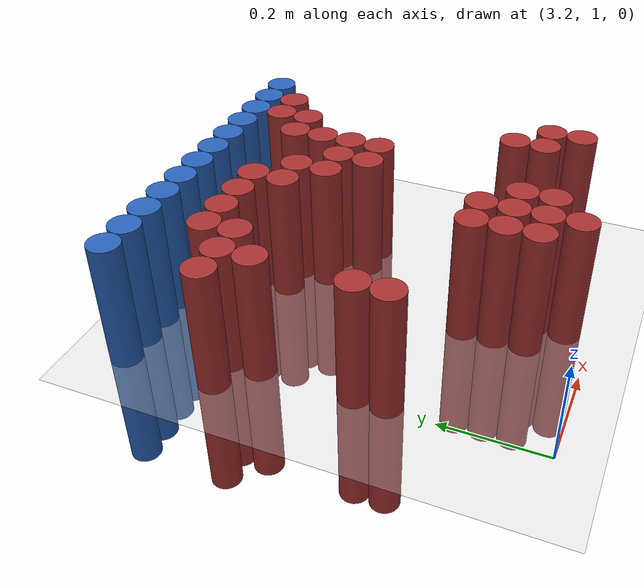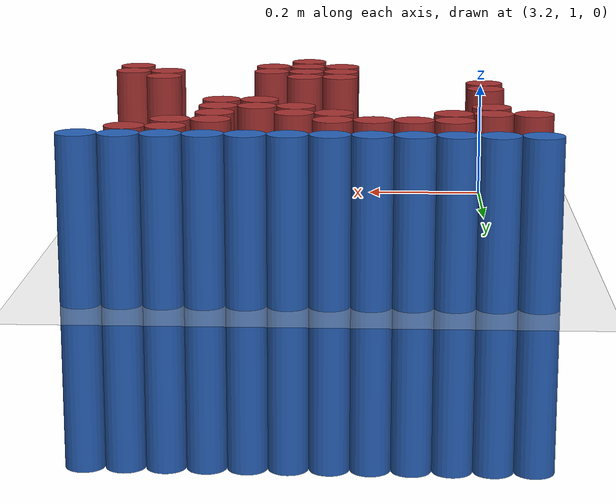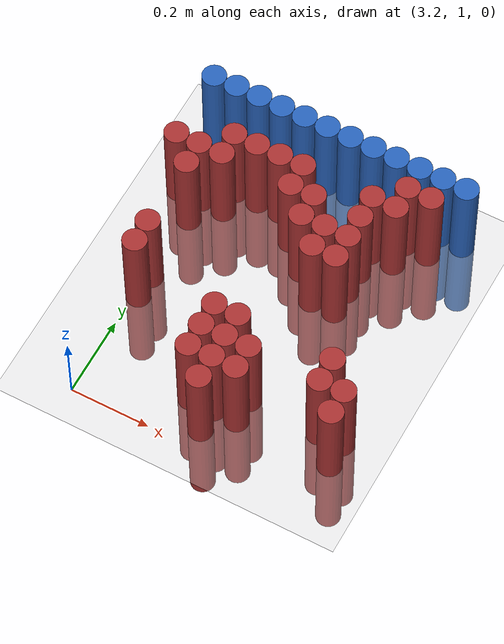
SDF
<sdf version="1.6">
 <world name="default">
  <model name="ground_plane">
   <static>1</static>
   <link name="link">
    <collision name="collision">
     <geometry><plane><normal>0 0 1</normal><size>100 100</size></plane></geometry>
     <surface><friction><ode><mu>100</mu><mu2>50</mu2></ode></friction></surface>
    </collision>
    <visual name="visual">
     <cast_shadows>0</cast_shadows>
     <geometry><plane><normal>0 0 1</normal><size>100 100</size></plane></geometry>
     <material>
      <script><uri>file://media/materials/scripts/gazebo.material</uri><name>Gazebo/Grey</name></script>
     </material>
    </visual>
   </link>
  </model>
  <model name="unit_cylinder_113">
   <static>1</static>
   <pose>3.150000 1.770000 0.000000 0.000000 0.000000 0.000000</pose>
   <link name="link">
    <inertial>
     <mass>1</mass>
     <inertia><ixx>0.145833</ixx><ixy>0</ixy><ixz>0</ixz><iyy>0.145833</iyy><iyz>0</iyz><izz>0.125</izz></inertia>
    </inertial>
    <collision name="collision">
     <geometry><cylinder><radius>0.030000</radius><length>0.5</length></cylinder></geometry>
    </collision>
    <visual name="visual">
     <geometry><cylinder><radius>0.030000</radius><length>0.5</length></cylinder></geometry>
     <material>
      <ambient>0.152000 0.379000 0.720000 1</ambient>
      <diffuse>0.152000 0.379000 0.720000 1</diffuse>
     </material>
     <material>
      <script><name>Gazebo/Grey</name><uri>file://media/materials/scripts/gazebo.material</uri></script>
     </material>
    </visual>
   </link>
  </model>
  <model name="unit_cylinder_114">
   <static>1</static>
   <pose>3.210000 1.770000 0.000000 0.000000 0.000000 0.000000</pose>
   <link name="link">
    <inertial>
     <mass>1</mass>
     <inertia><ixx>0.145833</ixx><ixy>0</ixy><ixz>0</ixz><iyy>0.145833</iyy><iyz>0</iyz><izz>0.125</izz></inertia>
    </inertial>
    <collision name="collision">
     <geometry><cylinder><radius>0.030000</radius><length>0.5</length></cylinder></geometry>
    </collision>
    <visual name="visual">
     <geometry><cylinder><radius>0.030000</radius><length>0.5</length></cylinder></geometry>
     <material>
      <ambient>0.152000 0.379000 0.720000 1</ambient>
      <diffuse>0.152000 0.379000 0.720000 1</diffuse>
     </material>
     <material>
      <script><name>Gazebo/Grey</name><uri>file://media/materials/scripts/gazebo.material</uri></script>
     </material>
    </visual>
   </link>
  </model>
  <model name="unit_cylinder_115">
   <static>1</static>
   <pose>3.270000 1.770000 0.000000 0.000000 0.000000 0.000000</pose>
   <link name="link">
    <inertial>
     <mass>1</mass>
     <inertia><ixx>0.145833</ixx><ixy>0</ixy><ixz>0</ixz><iyy>0.145833</iyy><iyz>0</iyz><izz>0.125</izz></inertia>
    </inertial>
    <collision name="collision">
     <geometry><cylinder><radius>0.030000</radius><length>0.5</length></cylinder></geometry>
    </collision>
    <visual name="visual">
     <geometry><cylinder><radius>0.030000</radius><length>0.5</length></cylinder></geometry>
     <material>
      <ambient>0.152000 0.379000 0.720000 1</ambient>
      <diffuse>0.152000 0.379000 0.720000 1</diffuse>
     </material>
     <material>
      <script><name>Gazebo/Grey</name><uri>file://media/materials/scripts/gazebo.material</uri></script>
     </material>
    </visual>
   </link>
  </model>
  <model name="unit_cylinder_116">
   <static>1</static>
   <pose>3.330000 1.770000 0.000000 0.000000 0.000000 0.000000</pose>
   <link name="link">
    <inertial>
     <mass>1</mass>
     <inertia><ixx>0.145833</ixx><ixy>0</ixy><ixz>0</ixz><iyy>0.145833</iyy><iyz>0</iyz><izz>0.125</izz></inertia>
    </inertial>
    <collision name="collision">
     <geometry><cylinder><radius>0.030000</radius><length>0.5</length></cylinder></geometry>
    </collision>
    <visual name="visual">
     <geometry><cylinder><radius>0.030000</radius><length>0.5</length></cylinder></geometry>
     <material>
      <ambient>0.152000 0.379000 0.720000 1</ambient>
      <diffuse>0.152000 0.379000 0.720000 1</diffuse>
     </material>
     <material>
      <script><name>Gazebo/Grey</name><uri>file://media/materials/scripts/gazebo.material</uri></script>
     </material>
    </visual>
   </link>
  </model>
  <model name="unit_cylinder_117">
   <static>1</static>
   <pose>3.390000 1.770000 0.000000 0.000000 0.000000 0.000000</pose>
   <link name="link">
    <inertial>
     <mass>1</mass>
     <inertia><ixx>0.145833</ixx><ixy>0</ixy><ixz>0</ixz><iyy>0.145833</iyy><iyz>0</iyz><izz>0.125</izz></inertia>
    </inertial>
    <collision name="collision">
     <geometry><cylinder><radius>0.030000</radius><length>0.5</length></cylinder></geometry>
    </collision>
    <visual name="visual">
     <geometry><cylinder><radius>0.030000</radius><length>0.5</length></cylinder></geometry>
     <material>
      <ambient>0.152000 0.379000 0.720000 1</ambient>
      <diffuse>0.152000 0.379000 0.720000 1</diffuse>
     </material>
     <material>
      <script><name>Gazebo/Grey</name><uri>file://media/materials/scripts/gazebo.material</uri></script>
     </material>
    </visual>
   </link>
  </model>
  <model name="unit_cylinder_118">
   <static>1</static>
   <pose>3.450000 1.770000 0.000000 0.000000 0.000000 0.000000</pose>
   <link name="link">
    <inertial>
     <mass>1</mass>
     <inertia><ixx>0.145833</ixx><ixy>0</ixy><ixz>0</ixz><iyy>0.145833</iyy><iyz>0</iyz><izz>0.125</izz></inertia>
    </inertial>
    <collision name="collision">
     <geometry><cylinder><radius>0.030000</radius><length>0.5</length></cylinder></geometry>
    </collision>
    <visual name="visual">
     <geometry><cylinder><radius>0.030000</radius><length>0.5</length></cylinder></geometry>
     <material>
      <ambient>0.152000 0.379000 0.720000 1</ambient>
      <diffuse>0.152000 0.379000 0.720000 1</diffuse>
     </material>
     <material>
      <script><name>Gazebo/Grey</name><uri>file://media/materials/scripts/gazebo.material</uri></script>
     </material>
    </visual>
   </link>
  </model>
  <model name="unit_cylinder_119">
   <static>1</static>
   <pose>3.510000 1.770000 0.000000 0.000000 0.000000 0.000000</pose>
   <link name="link">
    <inertial>
     <mass>1</mass>
     <inertia><ixx>0.145833</ixx><ixy>0</ixy><ixz>0</ixz><iyy>0.145833</iyy><iyz>0</iyz><izz>0.125</izz></inertia>
    </inertial>
    <collision name="collision">
     <geometry><cylinder><radius>0.030000</radius><length>0.5</length></cylinder></geometry>
    </collision>
    <visual name="visual">
     <geometry><cylinder><radius>0.030000</radius><length>0.5</length></cylinder></geometry>
     <material>
      <ambient>0.152000 0.379000 0.720000 1</ambient>
      <diffuse>0.152000 0.379000 0.720000 1</diffuse>
     </material>
     <material>
      <script><name>Gazebo/Grey</name><uri>file://media/materials/scripts/gazebo.material</uri></script>
     </material>
    </visual>
   </link>
  </model>
  <model name="unit_cylinder_120">
   <static>1</static>
   <pose>3.570000 1.770000 0.000000 0.000000 0.000000 0.000000</pose>
   <link name="link">
    <inertial>
     <mass>1</mass>
     <inertia><ixx>0.145833</ixx><ixy>0</ixy><ixz>0</ixz><iyy>0.145833</iyy><iyz>0</iyz><izz>0.125</izz></inertia>
    </inertial>
    <collision name="collision">
     <geometry><cylinder><radius>0.030000</radius><length>0.5</length></cylinder></geometry>
    </collision>
    <visual name="visual">
     <geometry><cylinder><radius>0.030000</radius><length>0.5</length></cylinder></geometry>
     <material>
      <ambient>0.152000 0.379000 0.720000 1</ambient>
      <diffuse>0.152000 0.379000 0.720000 1</diffuse>
     </material>
     <material>
      <script><name>Gazebo/Grey</name><uri>file://media/materials/scripts/gazebo.material</uri></script>
     </material>
    </visual>
   </link>
  </model>
  <model name="unit_cylinder_121">
   <static>1</static>
   <pose>3.630000 1.770000 0.000000 0.000000 0.000000 0.000000</pose>
   <link name="link">
    <inertial>
     <mass>1</mass>
     <inertia><ixx>0.145833</ixx><ixy>0</ixy><ixz>0</ixz><iyy>0.145833</iyy><iyz>0</iyz><izz>0.125</izz></inertia>
    </inertial>
    <collision name="collision">
     <geometry><cylinder><radius>0.030000</radius><length>0.5</length></cylinder></geometry>
    </collision>
    <visual name="visual">
     <geometry><cylinder><radius>0.030000</radius><length>0.5</length></cylinder></geometry>
     <material>
      <ambient>0.152000 0.379000 0.720000 1</ambient>
      <diffuse>0.152000 0.379000 0.720000 1</diffuse>
     </material>
     <material>
      <script><name>Gazebo/Grey</name><uri>file://media/materials/scripts/gazebo.material</uri></script>
     </material>
    </visual>
   </link>
  </model>
  <model name="unit_cylinder_122">
   <static>1</static>
   <pose>3.690000 1.770000 0.000000 0.000000 0.000000 0.000000</pose>
   <link name="link">
    <inertial>
     <mass>1</mass>
     <inertia><ixx>0.145833</ixx><ixy>0</ixy><ixz>0</ixz><iyy>0.145833</iyy><iyz>0</iyz><izz>0.125</izz></inertia>
    </inertial>
    <collision name="collision">
     <geometry><cylinder><radius>0.030000</radius><length>0.5</length></cylinder></geometry>
    </collision>
    <visual name="visual">
     <geometry><cylinder><radius>0.030000</radius><length>0.5</length></cylinder></geometry>
     <material>
      <ambient>0.152000 0.379000 0.720000 1</ambient>
      <diffuse>0.152000 0.379000 0.720000 1</diffuse>
     </material>
     <material>
      <script><name>Gazebo/Grey</name><uri>file://media/materials/scripts/gazebo.material</uri></script>
     </material>
    </visual>
   </link>
  </model>
  <model name="unit_cylinder_123">
   <static>1</static>
   <pose>3.750000 1.770000 0.000000 0.000000 0.000000 0.000000</pose>
   <link name="link">
    <inertial>
     <mass>1</mass>
     <inertia><ixx>0.145833</ixx><ixy>0</ixy><ixz>0</ixz><iyy>0.145833</iyy><iyz>0</iyz><izz>0.125</izz></inertia>
    </inertial>
    <collision name="collision">
     <geometry><cylinder><radius>0.030000</radius><length>0.5</length></cylinder></geometry>
    </collision>
    <visual name="visual">
     <geometry><cylinder><radius>0.030000</radius><length>0.5</length></cylinder></geometry>
     <material>
      <ambient>0.152000 0.379000 0.720000 1</ambient>
      <diffuse>0.152000 0.379000 0.720000 1</diffuse>
     </material>
     <material>
      <script><name>Gazebo/Grey</name><uri>file://media/materials/scripts/gazebo.material</uri></script>
     </material>
    </visual>
   </link>
  </model>
  <model name="unit_cylinder_124">
   <static>1</static>
   <pose>3.810000 1.770000 0.000000 0.000000 0.000000 0.000000</pose>
   <link name="link">
    <inertial>
     <mass>1</mass>
     <inertia><ixx>0.145833</ixx><ixy>0</ixy><ixz>0</ixz><iyy>0.145833</iyy><iyz>0</iyz><izz>0.125</izz></inertia>
    </inertial>
    <collision name="collision">
     <geometry><cylinder><radius>0.030000</radius><length>0.5</length></cylinder></geometry>
    </collision>
    <visual name="visual">
     <geometry><cylinder><radius>0.030000</radius><length>0.5</length></cylinder></geometry>
     <material>
      <ambient>0.152000 0.379000 0.720000 1</ambient>
      <diffuse>0.152000 0.379000 0.720000 1</diffuse>
     </material>
     <material>
      <script><name>Gazebo/Grey</name><uri>file://media/materials/scripts/gazebo.material</uri></script>
     </material>
    </visual>
   </link>
  </model>
  <model name="unit_cylinder_132">
   <static>1</static>
   <pose>3.690000 1.710000 0.000000 0.000000 0.000000 0.000000</pose>
   <link name="link">
    <inertial>
     <mass>1</mass>
     <inertia><ixx>0.145833</ixx><ixy>0</ixy><ixz>0</ixz><iyy>0.145833</iyy><iyz>0</iyz><izz>0.125</izz></inertia>
    </inertial>
    <collision name="collision">
     <geometry><cylinder><radius>0.030000</radius><length>0.5</length></cylinder></geometry>
    </collision>
    <visual name="visual">
     <geometry><cylinder><radius>0.030000</radius><length>0.5</length></cylinder></geometry>
     <material>
      <ambient>0.648000 0.192000 0.192000 1</ambient>
      <diffuse>0.648000 0.192000 0.192000 1</diffuse>
     </material>
     <material>
      <script><name>Gazebo/Grey</name><uri>file://media/materials/scripts/gazebo.material</uri></script>
     </material>
    </visual>
   </link>
  </model>
  <model name="unit_cylinder_133">
   <static>1</static>
   <pose>3.750000 1.710000 0.000000 0.000000 0.000000 0.000000</pose>
   <link name="link">
    <inertial>
     <mass>1</mass>
     <inertia><ixx>0.145833</ixx><ixy>0</ixy><ixz>0</ixz><iyy>0.145833</iyy><iyz>0</iyz><izz>0.125</izz></inertia>
    </inertial>
    <collision name="collision">
     <geometry><cylinder><radius>0.030000</radius><length>0.5</length></cylinder></geometry>
    </collision>
    <visual name="visual">
     <geometry><cylinder><radius>0.030000</radius><length>0.5</length></cylinder></geometry>
     <material>
      <ambient>0.648000 0.192000 0.192000 1</ambient>
      <diffuse>0.648000 0.192000 0.192000 1</diffuse>
     </material>
     <material>
      <script><name>Gazebo/Grey</name><uri>file://media/materials/scripts/gazebo.material</uri></script>
     </material>
    </visual>
   </link>
  </model>
  <model name="unit_cylinder_135">
   <static>1</static>
   <pose>3.270000 1.650000 0.000000 0.000000 0.000000 0.000000</pose>
   <link name="link">
    <inertial>
     <mass>1</mass>
     <inertia><ixx>0.145833</ixx><ixy>0</ixy><ixz>0</ixz><iyy>0.145833</iyy><iyz>0</iyz><izz>0.125</izz></inertia>
    </inertial>
    <collision name="collision">
     <geometry><cylinder><radius>0.030000</radius><length>0.5</length></cylinder></geometry>
    </collision>
    <visual name="visual">
     <geometry><cylinder><radius>0.030000</radius><length>0.5</length></cylinder></geometry>
     <material>
      <ambient>0.648000 0.192000 0.192000 1</ambient>
      <diffuse>0.648000 0.192000 0.192000 1</diffuse>
     </material>
     <material>
      <script><name>Gazebo/Grey</name><uri>file://media/materials/scripts/gazebo.material</uri></script>
     </material>
    </visual>
   </link>
  </model>
  <model name="unit_cylinder_136">
   <static>1</static>
   <pose>3.330000 1.650000 0.000000 0.000000 0.000000 0.000000</pose>
   <link name="link">
    <inertial>
     <mass>1</mass>
     <inertia><ixx>0.145833</ixx><ixy>0</ixy><ixz>0</ixz><iyy>0.145833</iyy><iyz>0</iyz><izz>0.125</izz></inertia>
    </inertial>
    <collision name="collision">
     <geometry><cylinder><radius>0.030000</radius><length>0.5</length></cylinder></geometry>
    </collision>
    <visual name="visual">
     <geometry><cylinder><radius>0.030000</radius><length>0.5</length></cylinder></geometry>
     <material>
      <ambient>0.648000 0.192000 0.192000 1</ambient>
      <diffuse>0.648000 0.192000 0.192000 1</diffuse>
     </material>
     <material>
      <script><name>Gazebo/Grey</name><uri>file://media/materials/scripts/gazebo.material</uri></script>
     </material>
    </visual>
   </link>
  </model>
  <model name="unit_cylinder_137">
   <static>1</static>
   <pose>3.390000 1.650000 0.000000 0.000000 0.000000 0.000000</pose>
   <link name="link">
    <inertial>
     <mass>1</mass>
     <inertia><ixx>0.145833</ixx><ixy>0</ixy><ixz>0</ixz><iyy>0.145833</iyy><iyz>0</iyz><izz>0.125</izz></inertia>
    </inertial>
    <collision name="collision">
     <geometry><cylinder><radius>0.030000</radius><length>0.5</length></cylinder></geometry>
    </collision>
    <visual name="visual">
     <geometry><cylinder><radius>0.030000</radius><length>0.5</length></cylinder></geometry>
     <material>
      <ambient>0.648000 0.192000 0.192000 1</ambient>
      <diffuse>0.648000 0.192000 0.192000 1</diffuse>
     </material>
     <material>
      <script><name>Gazebo/Grey</name><uri>file://media/materials/scripts/gazebo.material</uri></script>
     </material>
    </visual>
   </link>
  </model>
  <model name="unit_cylinder_138">
   <static>1</static>
   <pose>3.450000 1.650000 0.000000 0.000000 0.000000 0.000000</pose>
   <link name="link">
    <inertial>
     <mass>1</mass>
     <inertia><ixx>0.145833</ixx><ixy>0</ixy><ixz>0</ixz><iyy>0.145833</iyy><iyz>0</iyz><izz>0.125</izz></inertia>
    </inertial>
    <collision name="collision">
     <geometry><cylinder><radius>0.030000</radius><length>0.5</length></cylinder></geometry>
    </collision>
    <visual name="visual">
     <geometry><cylinder><radius>0.030000</radius><length>0.5</length></cylinder></geometry>
     <material>
      <ambient>0.648000 0.192000 0.192000 1</ambient>
      <diffuse>0.648000 0.192000 0.192000 1</diffuse>
     </material>
     <material>
      <script><name>Gazebo/Grey</name><uri>file://media/materials/scripts/gazebo.material</uri></script>
     </material>
    </visual>
   </link>
  </model>
  <model name="unit_cylinder_139">
   <static>1</static>
   <pose>3.630000 1.650000 0.000000 0.000000 0.000000 0.000000</pose>
   <link name="link">
    <inertial>
     <mass>1</mass>
     <inertia><ixx>0.145833</ixx><ixy>0</ixy><ixz>0</ixz><iyy>0.145833</iyy><iyz>0</iyz><izz>0.125</izz></inertia>
    </inertial>
    <collision name="collision">
     <geometry><cylinder><radius>0.030000</radius><length>0.5</length></cylinder></geometry>
    </collision>
    <visual name="visual">
     <geometry><cylinder><radius>0.030000</radius><length>0.5</length></cylinder></geometry>
     <material>
      <ambient>0.648000 0.192000 0.192000 1</ambient>
      <diffuse>0.648000 0.192000 0.192000 1</diffuse>
     </material>
     <material>
      <script><name>Gazebo/Grey</name><uri>file://media/materials/scripts/gazebo.material</uri></script>
     </material>
    </visual>
   </link>
  </model>
  <model name="unit_cylinder_140">
   <static>1</static>
   <pose>3.690000 1.650000 0.000000 0.000000 0.000000 0.000000</pose>
   <link name="link">
    <inertial>
     <mass>1</mass>
     <inertia><ixx>0.145833</ixx><ixy>0</ixy><ixz>0</ixz><iyy>0.145833</iyy><iyz>0</iyz><izz>0.125</izz></inertia>
    </inertial>
    <collision name="collision">
     <geometry><cylinder><radius>0.030000</radius><length>0.5</length></cylinder></geometry>
    </collision>
    <visual name="visual">
     <geometry><cylinder><radius>0.030000</radius><length>0.5</length></cylinder></geometry>
     <material>
      <ambient>0.648000 0.192000 0.192000 1</ambient>
      <diffuse>0.648000 0.192000 0.192000 1</diffuse>
     </material>
     <material>
      <script><name>Gazebo/Grey</name><uri>file://media/materials/scripts/gazebo.material</uri></script>
     </material>
    </visual>
   </link>
  </model>
  <model name="unit_cylinder_148">
   <static>1</static>
   <pose>3.150000 1.590000 0.000000 0.000000 0.000000 0.000000</pose>
   <link name="link">
    <inertial>
     <mass>1</mass>
     <inertia><ixx>0.145833</ixx><ixy>0</ixy><ixz>0</ixz><iyy>0.145833</iyy><iyz>0</iyz><izz>0.125</izz></inertia>
    </inertial>
    <collision name="collision">
     <geometry><cylinder><radius>0.030000</radius><length>0.5</length></cylinder></geometry>
    </collision>
    <visual name="visual">
     <geometry><cylinder><radius>0.030000</radius><length>0.5</length></cylinder></geometry>
     <material>
      <ambient>0.648000 0.192000 0.192000 1</ambient>
      <diffuse>0.648000 0.192000 0.192000 1</diffuse>
     </material>
     <material>
      <script><name>Gazebo/Grey</name><uri>file://media/materials/scripts/gazebo.material</uri></script>
     </material>
    </visual>
   </link>
  </model>
  <model name="unit_cylinder_149">
   <static>1</static>
   <pose>3.210000 1.590000 0.000000 0.000000 0.000000 0.000000</pose>
   <link name="link">
    <inertial>
     <mass>1</mass>
     <inertia><ixx>0.145833</ixx><ixy>0</ixy><ixz>0</ixz><iyy>0.145833</iyy><iyz>0</iyz><izz>0.125</izz></inertia>
    </inertial>
    <collision name="collision">
     <geometry><cylinder><radius>0.030000</radius><length>0.5</length></cylinder></geometry>
    </collision>
    <visual name="visual">
     <geometry><cylinder><radius>0.030000</radius><length>0.5</length></cylinder></geometry>
     <material>
      <ambient>0.648000 0.192000 0.192000 1</ambient>
      <diffuse>0.648000 0.192000 0.192000 1</diffuse>
     </material>
     <material>
      <script><name>Gazebo/Grey</name><uri>file://media/materials/scripts/gazebo.material</uri></script>
     </material>
    </visual>
   </link>
  </model>
  <model name="unit_cylinder_150">
   <static>1</static>
   <pose>3.270000 1.590000 0.000000 0.000000 0.000000 0.000000</pose>
   <link name="link">
    <inertial>
     <mass>1</mass>
     <inertia><ixx>0.145833</ixx><ixy>0</ixy><ixz>0</ixz><iyy>0.145833</iyy><iyz>0</iyz><izz>0.125</izz></inertia>
    </inertial>
    <collision name="collision">
     <geometry><cylinder><radius>0.030000</radius><length>0.5</length></cylinder></geometry>
    </collision>
    <visual name="visual">
     <geometry><cylinder><radius>0.030000</radius><length>0.5</length></cylinder></geometry>
     <material>
      <ambient>0.648000 0.192000 0.192000 1</ambient>
      <diffuse>0.648000 0.192000 0.192000 1</diffuse>
     </material>
     <material>
      <script><name>Gazebo/Grey</name><uri>file://media/materials/scripts/gazebo.material</uri></script>
     </material>
    </visual>
   </link>
  </model>
  <model name="unit_cylinder_151">
   <static>1</static>
   <pose>3.450000 1.590000 0.000000 0.000000 0.000000 0.000000</pose>
   <link name="link">
    <inertial>
     <mass>1</mass>
     <inertia><ixx>0.145833</ixx><ixy>0</ixy><ixz>0</ixz><iyy>0.145833</iyy><iyz>0</iyz><izz>0.125</izz></inertia>
    </inertial>
    <collision name="collision">
     <geometry><cylinder><radius>0.030000</radius><length>0.5</length></cylinder></geometry>
    </collision>
    <visual name="visual">
     <geometry><cylinder><radius>0.030000</radius><length>0.5</length></cylinder></geometry>
     <material>
      <ambient>0.648000 0.192000 0.192000 1</ambient>
      <diffuse>0.648000 0.192000 0.192000 1</diffuse>
     </material>
     <material>
      <script><name>Gazebo/Grey</name><uri>file://media/materials/scripts/gazebo.material</uri></script>
     </material>
    </visual>
   </link>
  </model>
  <model name="unit_cylinder_152">
   <static>1</static>
   <pose>3.510000 1.590000 0.000000 0.000000 0.000000 0.000000</pose>
   <link name="link">
    <inertial>
     <mass>1</mass>
     <inertia><ixx>0.145833</ixx><ixy>0</ixy><ixz>0</ixz><iyy>0.145833</iyy><iyz>0</iyz><izz>0.125</izz></inertia>
    </inertial>
    <collision name="collision">
     <geometry><cylinder><radius>0.030000</radius><length>0.5</length></cylinder></geometry>
    </collision>
    <visual name="visual">
     <geometry><cylinder><radius>0.030000</radius><length>0.5</length></cylinder></geometry>
     <material>
      <ambient>0.648000 0.192000 0.192000 1</ambient>
      <diffuse>0.648000 0.192000 0.192000 1</diffuse>
     </material>
     <material>
      <script><name>Gazebo/Grey</name><uri>file://media/materials/scripts/gazebo.material</uri></script>
     </material>
    </visual>
   </link>
  </model>
  <model name="unit_cylinder_153">
   <static>1</static>
   <pose>3.630000 1.590000 0.000000 0.000000 0.000000 0.000000</pose>
   <link name="link">
    <inertial>
     <mass>1</mass>
     <inertia><ixx>0.145833</ixx><ixy>0</ixy><ixz>0</ixz><iyy>0.145833</iyy><iyz>0</iyz><izz>0.125</izz></inertia>
    </inertial>
    <collision name="collision">
     <geometry><cylinder><radius>0.030000</radius><length>0.5</length></cylinder></geometry>
    </collision>
    <visual name="visual">
     <geometry><cylinder><radius>0.030000</radius><length>0.5</length></cylinder></geometry>
     <material>
      <ambient>0.648000 0.192000 0.192000 1</ambient>
      <diffuse>0.648000 0.192000 0.192000 1</diffuse>
     </material>
     <material>
      <script><name>Gazebo/Grey</name><uri>file://media/materials/scripts/gazebo.material</uri></script>
     </material>
    </visual>
   </link>
  </model>
  <model name="unit_cylinder_161">
   <static>1</static>
   <pose>3.210000 1.530000 0.000000 0.000000 0.000000 0.000000</pose>
   <link name="link">
    <inertial>
     <mass>1</mass>
     <inertia><ixx>0.145833</ixx><ixy>0</ixy><ixz>0</ixz><iyy>0.145833</iyy><iyz>0</iyz><izz>0.125</izz></inertia>
    </inertial>
    <collision name="collision">
     <geometry><cylinder><radius>0.030000</radius><length>0.5</length></cylinder></geometry>
    </collision>
    <visual name="visual">
     <geometry><cylinder><radius>0.030000</radius><length>0.5</length></cylinder></geometry>
     <material>
      <ambient>0.648000 0.192000 0.192000 1</ambient>
      <diffuse>0.648000 0.192000 0.192000 1</diffuse>
     </material>
     <material>
      <script><name>Gazebo/Grey</name><uri>file://media/materials/scripts/gazebo.material</uri></script>
     </material>
    </visual>
   </link>
  </model>
  <model name="unit_cylinder_162">
   <static>1</static>
   <pose>3.510000 1.530000 0.000000 0.000000 0.000000 0.000000</pose>
   <link name="link">
    <inertial>
     <mass>1</mass>
     <inertia><ixx>0.145833</ixx><ixy>0</ixy><ixz>0</ixz><iyy>0.145833</iyy><iyz>0</iyz><izz>0.125</izz></inertia>
    </inertial>
    <collision name="collision">
     <geometry><cylinder><radius>0.030000</radius><length>0.5</length></cylinder></geometry>
    </collision>
    <visual name="visual">
     <geometry><cylinder><radius>0.030000</radius><length>0.5</length></cylinder></geometry>
     <material>
      <ambient>0.648000 0.192000 0.192000 1</ambient>
      <diffuse>0.648000 0.192000 0.192000 1</diffuse>
     </material>
     <material>
      <script><name>Gazebo/Grey</name><uri>file://media/materials/scripts/gazebo.material</uri></script>
     </material>
    </visual>
   </link>
  </model>
  <model name="unit_cylinder_163">
   <static>1</static>
   <pose>3.570000 1.530000 0.000000 0.000000 0.000000 0.000000</pose>
   <link name="link">
    <inertial>
     <mass>1</mass>
     <inertia><ixx>0.145833</ixx><ixy>0</ixy><ixz>0</ixz><iyy>0.145833</iyy><iyz>0</iyz><izz>0.125</izz></inertia>
    </inertial>
    <collision name="collision">
     <geometry><cylinder><radius>0.030000</radius><length>0.5</length></cylinder></geometry>
    </collision>
    <visual name="visual">
     <geometry><cylinder><radius>0.030000</radius><length>0.5</length></cylinder></geometry>
     <material>
      <ambient>0.648000 0.192000 0.192000 1</ambient>
      <diffuse>0.648000 0.192000 0.192000 1</diffuse>
     </material>
     <material>
      <script><name>Gazebo/Grey</name><uri>file://media/materials/scripts/gazebo.material</uri></script>
     </material>
    </visual>
   </link>
  </model>
  <model name="unit_cylinder_164">
   <static>1</static>
   <pose>3.630000 1.530000 0.000000 0.000000 0.000000 0.000000</pose>
   <link name="link">
    <inertial>
     <mass>1</mass>
     <inertia><ixx>0.145833</ixx><ixy>0</ixy><ixz>0</ixz><iyy>0.145833</iyy><iyz>0</iyz><izz>0.125</izz></inertia>
    </inertial>
    <collision name="collision">
     <geometry><cylinder><radius>0.030000</radius><length>0.5</length></cylinder></geometry>
    </collision>
    <visual name="visual">
     <geometry><cylinder><radius>0.030000</radius><length>0.5</length></cylinder></geometry>
     <material>
      <ambient>0.648000 0.192000 0.192000 1</ambient>
      <diffuse>0.648000 0.192000 0.192000 1</diffuse>
     </material>
     <material>
      <script><name>Gazebo/Grey</name><uri>file://media/materials/scripts/gazebo.material</uri></script>
     </material>
    </visual>
   </link>
  </model>
  <model name="unit_cylinder_169">
   <static>1</static>
   <pose>3.570000 1.470000 0.000000 0.000000 0.000000 0.000000</pose>
   <link name="link">
    <inertial>
     <mass>1</mass>
     <inertia><ixx>0.145833</ixx><ixy>0</ixy><ixz>0</ixz><iyy>0.145833</iyy><iyz>0</iyz><izz>0.125</izz></inertia>
    </inertial>
    <collision name="collision">
     <geometry><cylinder><radius>0.030000</radius><length>0.5</length></cylinder></geometry>
    </collision>
    <visual name="visual">
     <geometry><cylinder><radius>0.030000</radius><length>0.5</length></cylinder></geometry>
     <material>
      <ambient>0.648000 0.192000 0.192000 1</ambient>
      <diffuse>0.648000 0.192000 0.192000 1</diffuse>
     </material>
     <material>
      <script><name>Gazebo/Grey</name><uri>file://media/materials/scripts/gazebo.material</uri></script>
     </material>
    </visual>
   </link>
  </model>
  <model name="unit_cylinder_170">
   <static>1</static>
   <pose>3.630000 1.470000 0.000000 0.000000 0.000000 0.000000</pose>
   <link name="link">
    <inertial>
     <mass>1</mass>
     <inertia><ixx>0.145833</ixx><ixy>0</ixy><ixz>0</ixz><iyy>0.145833</iyy><iyz>0</iyz><izz>0.125</izz></inertia>
    </inertial>
    <collision name="collision">
     <geometry><cylinder><radius>0.030000</radius><length>0.5</length></cylinder></geometry>
    </collision>
    <visual name="visual">
     <geometry><cylinder><radius>0.030000</radius><length>0.5</length></cylinder></geometry>
     <material>
      <ambient>0.648000 0.192000 0.192000 1</ambient>
      <diffuse>0.648000 0.192000 0.192000 1</diffuse>
     </material>
     <material>
      <script><name>Gazebo/Grey</name><uri>file://media/materials/scripts/gazebo.material</uri></script>
     </material>
    </visual>
   </link>
  </model>
  <model name="unit_cylinder_177">
   <static>1</static>
   <pose>3.210000 1.350000 0.000000 0.000000 0.000000 0.000000</pose>
   <link name="link">
    <inertial>
     <mass>1</mass>
     <inertia><ixx>0.145833</ixx><ixy>0</ixy><ixz>0</ixz><iyy>0.145833</iyy><iyz>0</iyz><izz>0.125</izz></inertia>
    </inertial>
    <collision name="collision">
     <geometry><cylinder><radius>0.030000</radius><length>0.5</length></cylinder></geometry>
    </collision>
    <visual name="visual">
     <geometry><cylinder><radius>0.030000</radius><length>0.5</length></cylinder></geometry>
     <material>
      <ambient>0.648000 0.192000 0.192000 1</ambient>
      <diffuse>0.648000 0.192000 0.192000 1</diffuse>
     </material>
     <material>
      <script><name>Gazebo/Grey</name><uri>file://media/materials/scripts/gazebo.material</uri></script>
     </material>
    </visual>
   </link>
  </model>
  <model name="unit_cylinder_182">
   <static>1</static>
   <pose>3.210000 1.290000 0.000000 0.000000 0.000000 0.000000</pose>
   <link name="link">
    <inertial>
     <mass>1</mass>
     <inertia><ixx>0.145833</ixx><ixy>0</ixy><ixz>0</ixz><iyy>0.145833</iyy><iyz>0</iyz><izz>0.125</izz></inertia>
    </inertial>
    <collision name="collision">
     <geometry><cylinder><radius>0.030000</radius><length>0.5</length></cylinder></geometry>
    </collision>
    <visual name="visual">
     <geometry><cylinder><radius>0.030000</radius><length>0.5</length></cylinder></geometry>
     <material>
      <ambient>0.648000 0.192000 0.192000 1</ambient>
      <diffuse>0.648000 0.192000 0.192000 1</diffuse>
     </material>
     <material>
      <script><name>Gazebo/Grey</name><uri>file://media/materials/scripts/gazebo.material</uri></script>
     </material>
    </visual>
   </link>
  </model>
  <model name="unit_cylinder_187">
   <static>1</static>
   <pose>3.450000 1.230000 0.000000 0.000000 0.000000 0.000000</pose>
   <link name="link">
    <inertial>
     <mass>1</mass>
     <inertia><ixx>0.145833</ixx><ixy>0</ixy><ixz>0</ixz><iyy>0.145833</iyy><iyz>0</iyz><izz>0.125</izz></inertia>
    </inertial>
    <collision name="collision">
     <geometry><cylinder><radius>0.030000</radius><length>0.5</length></cylinder></geometry>
    </collision>
    <visual name="visual">
     <geometry><cylinder><radius>0.030000</radius><length>0.5</length></cylinder></geometry>
     <material>
      <ambient>0.648000 0.192000 0.192000 1</ambient>
      <diffuse>0.648000 0.192000 0.192000 1</diffuse>
     </material>
     <material>
      <script><name>Gazebo/Grey</name><uri>file://media/materials/scripts/gazebo.material</uri></script>
     </material>
    </visual>
   </link>
  </model>
  <model name="unit_cylinder_188">
   <static>1</static>
   <pose>3.510000 1.230000 0.000000 0.000000 0.000000 0.000000</pose>
   <link name="link">
    <inertial>
     <mass>1</mass>
     <inertia><ixx>0.145833</ixx><ixy>0</ixy><ixz>0</ixz><iyy>0.145833</iyy><iyz>0</iyz><izz>0.125</izz></inertia>
    </inertial>
    <collision name="collision">
     <geometry><cylinder><radius>0.030000</radius><length>0.5</length></cylinder></geometry>
    </collision>
    <visual name="visual">
     <geometry><cylinder><radius>0.030000</radius><length>0.5</length></cylinder></geometry>
     <material>
      <ambient>0.648000 0.192000 0.192000 1</ambient>
      <diffuse>0.648000 0.192000 0.192000 1</diffuse>
     </material>
     <material>
      <script><name>Gazebo/Grey</name><uri>file://media/materials/scripts/gazebo.material</uri></script>
     </material>
    </visual>
   </link>
  </model>
  <model name="unit_cylinder_189">
   <static>1</static>
   <pose>3.750000 1.230000 0.000000 0.000000 0.000000 0.000000</pose>
   <link name="link">
    <inertial>
     <mass>1</mass>
     <inertia><ixx>0.145833</ixx><ixy>0</ixy><ixz>0</ixz><iyy>0.145833</iyy><iyz>0</iyz><izz>0.125</izz></inertia>
    </inertial>
    <collision name="collision">
     <geometry><cylinder><radius>0.030000</radius><length>0.5</length></cylinder></geometry>
    </collision>
    <visual name="visual">
     <geometry><cylinder><radius>0.030000</radius><length>0.5</length></cylinder></geometry>
     <material>
      <ambient>0.648000 0.192000 0.192000 1</ambient>
      <diffuse>0.648000 0.192000 0.192000 1</diffuse>
     </material>
     <material>
      <script><name>Gazebo/Grey</name><uri>file://media/materials/scripts/gazebo.material</uri></script>
     </material>
    </visual>
   </link>
  </model>
  <model name="unit_cylinder_196">
   <static>1</static>
   <pose>3.450000 1.170000 0.000000 0.000000 0.000000 0.000000</pose>
   <link name="link">
    <inertial>
     <mass>1</mass>
     <inertia><ixx>0.145833</ixx><ixy>0</ixy><ixz>0</ixz><iyy>0.145833</iyy><iyz>0</iyz><izz>0.125</izz></inertia>
    </inertial>
    <collision name="collision">
     <geometry><cylinder><radius>0.030000</radius><length>0.5</length></cylinder></geometry>
    </collision>
    <visual name="visual">
     <geometry><cylinder><radius>0.030000</radius><length>0.5</length></cylinder></geometry>
     <material>
      <ambient>0.648000 0.192000 0.192000 1</ambient>
      <diffuse>0.648000 0.192000 0.192000 1</diffuse>
     </material>
     <material>
      <script><name>Gazebo/Grey</name><uri>file://media/materials/scripts/gazebo.material</uri></script>
     </material>
    </visual>
   </link>
  </model>
  <model name="unit_cylinder_197">
   <static>1</static>
   <pose>3.510000 1.170000 0.000000 0.000000 0.000000 0.000000</pose>
   <link name="link">
    <inertial>
     <mass>1</mass>
     <inertia><ixx>0.145833</ixx><ixy>0</ixy><ixz>0</ixz><iyy>0.145833</iyy><iyz>0</iyz><izz>0.125</izz></inertia>
    </inertial>
    <collision name="collision">
     <geometry><cylinder><radius>0.030000</radius><length>0.5</length></cylinder></geometry>
    </collision>
    <visual name="visual">
     <geometry><cylinder><radius>0.030000</radius><length>0.5</length></cylinder></geometry>
     <material>
      <ambient>0.648000 0.192000 0.192000 1</ambient>
      <diffuse>0.648000 0.192000 0.192000 1</diffuse>
     </material>
     <material>
      <script><name>Gazebo/Grey</name><uri>file://media/materials/scripts/gazebo.material</uri></script>
     </material>
    </visual>
   </link>
  </model>
  <model name="unit_cylinder_198">
   <static>1</static>
   <pose>3.570000 1.170000 0.000000 0.000000 0.000000 0.000000</pose>
   <link name="link">
    <inertial>
     <mass>1</mass>
     <inertia><ixx>0.145833</ixx><ixy>0</ixy><ixz>0</ixz><iyy>0.145833</iyy><iyz>0</iyz><izz>0.125</izz></inertia>
    </inertial>
    <collision name="collision">
     <geometry><cylinder><radius>0.030000</radius><length>0.5</length></cylinder></geometry>
    </collision>
    <visual name="visual">
     <geometry><cylinder><radius>0.030000</radius><length>0.5</length></cylinder></geometry>
     <material>
      <ambient>0.648000 0.192000 0.192000 1</ambient>
      <diffuse>0.648000 0.192000 0.192000 1</diffuse>
     </material>
     <material>
      <script><name>Gazebo/Grey</name><uri>file://media/materials/scripts/gazebo.material</uri></script>
     </material>
    </visual>
   </link>
  </model>
  <model name="unit_cylinder_199">
   <static>1</static>
   <pose>3.750000 1.170000 0.000000 0.000000 0.000000 0.000000</pose>
   <link name="link">
    <inertial>
     <mass>1</mass>
     <inertia><ixx>0.145833</ixx><ixy>0</ixy><ixz>0</ixz><iyy>0.145833</iyy><iyz>0</iyz><izz>0.125</izz></inertia>
    </inertial>
    <collision name="collision">
     <geometry><cylinder><radius>0.030000</radius><length>0.5</length></cylinder></geometry>
    </collision>
    <visual name="visual">
     <geometry><cylinder><radius>0.030000</radius><length>0.5</length></cylinder></geometry>
     <material>
      <ambient>0.648000 0.192000 0.192000 1</ambient>
      <diffuse>0.648000 0.192000 0.192000 1</diffuse>
     </material>
     <material>
      <script><name>Gazebo/Grey</name><uri>file://media/materials/scripts/gazebo.material</uri></script>
     </material>
    </visual>
   </link>
  </model>
  <model name="unit_cylinder_200">
   <static>1</static>
   <pose>3.810000 1.170000 0.000000 0.000000 0.000000 0.000000</pose>
   <link name="link">
    <inertial>
     <mass>1</mass>
     <inertia><ixx>0.145833</ixx><ixy>0</ixy><ixz>0</ixz><iyy>0.145833</iyy><iyz>0</iyz><izz>0.125</izz></inertia>
    </inertial>
    <collision name="collision">
     <geometry><cylinder><radius>0.030000</radius><length>0.5</length></cylinder></geometry>
    </collision>
    <visual name="visual">
     <geometry><cylinder><radius>0.030000</radius><length>0.5</length></cylinder></geometry>
     <material>
      <ambient>0.648000 0.192000 0.192000 1</ambient>
      <diffuse>0.648000 0.192000 0.192000 1</diffuse>
     </material>
     <material>
      <script><name>Gazebo/Grey</name><uri>file://media/materials/scripts/gazebo.material</uri></script>
     </material>
    </visual>
   </link>
  </model>
  <model name="unit_cylinder_206">
   <static>1</static>
   <pose>3.450000 1.110000 0.000000 0.000000 0.000000 0.000000</pose>
   <link name="link">
    <inertial>
     <mass>1</mass>
     <inertia><ixx>0.145833</ixx><ixy>0</ixy><ixz>0</ixz><iyy>0.145833</iyy><iyz>0</iyz><izz>0.125</izz></inertia>
    </inertial>
    <collision name="collision">
     <geometry><cylinder><radius>0.030000</radius><length>0.5</length></cylinder></geometry>
    </collision>
    <visual name="visual">
     <geometry><cylinder><radius>0.030000</radius><length>0.5</length></cylinder></geometry>
     <material>
      <ambient>0.648000 0.192000 0.192000 1</ambient>
      <diffuse>0.648000 0.192000 0.192000 1</diffuse>
     </material>
     <material>
      <script><name>Gazebo/Grey</name><uri>file://media/materials/scripts/gazebo.material</uri></script>
     </material>
    </visual>
   </link>
  </model>
  <model name="unit_cylinder_207">
   <static>1</static>
   <pose>3.510000 1.110000 0.000000 0.000000 0.000000 0.000000</pose>
   <link name="link">
    <inertial>
     <mass>1</mass>
     <inertia><ixx>0.145833</ixx><ixy>0</ixy><ixz>0</ixz><iyy>0.145833</iyy><iyz>0</iyz><izz>0.125</izz></inertia>
    </inertial>
    <collision name="collision">
     <geometry><cylinder><radius>0.030000</radius><length>0.5</length></cylinder></geometry>
    </collision>
    <visual name="visual">
     <geometry><cylinder><radius>0.030000</radius><length>0.5</length></cylinder></geometry>
     <material>
      <ambient>0.648000 0.192000 0.192000 1</ambient>
      <diffuse>0.648000 0.192000 0.192000 1</diffuse>
     </material>
     <material>
      <script><name>Gazebo/Grey</name><uri>file://media/materials/scripts/gazebo.material</uri></script>
     </material>
    </visual>
   </link>
  </model>
  <model name="unit_cylinder_208">
   <static>1</static>
   <pose>3.570000 1.110000 0.000000 0.000000 0.000000 0.000000</pose>
   <link name="link">
    <inertial>
     <mass>1</mass>
     <inertia><ixx>0.145833</ixx><ixy>0</ixy><ixz>0</ixz><iyy>0.145833</iyy><iyz>0</iyz><izz>0.125</izz></inertia>
    </inertial>
    <collision name="collision">
     <geometry><cylinder><radius>0.030000</radius><length>0.5</length></cylinder></geometry>
    </collision>
    <visual name="visual">
     <geometry><cylinder><radius>0.030000</radius><length>0.5</length></cylinder></geometry>
     <material>
      <ambient>0.648000 0.192000 0.192000 1</ambient>
      <diffuse>0.648000 0.192000 0.192000 1</diffuse>
     </material>
     <material>
      <script><name>Gazebo/Grey</name><uri>file://media/materials/scripts/gazebo.material</uri></script>
     </material>
    </visual>
   </link>
  </model>
  <model name="unit_cylinder_209">
   <static>1</static>
   <pose>3.810000 1.110000 0.000000 0.000000 0.000000 0.000000</pose>
   <link name="link">
    <inertial>
     <mass>1</mass>
     <inertia><ixx>0.145833</ixx><ixy>0</ixy><ixz>0</ixz><iyy>0.145833</iyy><iyz>0</iyz><izz>0.125</izz></inertia>
    </inertial>
    <collision name="collision">
     <geometry><cylinder><radius>0.030000</radius><length>0.5</length></cylinder></geometry>
    </collision>
    <visual name="visual">
     <geometry><cylinder><radius>0.030000</radius><length>0.5</length></cylinder></geometry>
     <material>
      <ambient>0.648000 0.192000 0.192000 1</ambient>
      <diffuse>0.648000 0.192000 0.192000 1</diffuse>
     </material>
     <material>
      <script><name>Gazebo/Grey</name><uri>file://media/materials/scripts/gazebo.material</uri></script>
     </material>
    </visual>
   </link>
  </model>
  <model name="unit_cylinder_218">
   <static>1</static>
   <pose>3.510000 1.050000 0.000000 0.000000 0.000000 0.000000</pose>
   <link name="link">
    <inertial>
     <mass>1</mass>
     <inertia><ixx>0.145833</ixx><ixy>0</ixy><ixz>0</ixz><iyy>0.145833</iyy><iyz>0</iyz><izz>0.125</izz></inertia>
    </inertial>
    <collision name="collision">
     <geometry><cylinder><radius>0.030000</radius><length>0.5</length></cylinder></geometry>
    </collision>
    <visual name="visual">
     <geometry><cylinder><radius>0.030000</radius><length>0.5</length></cylinder></geometry>
     <material>
      <ambient>0.648000 0.192000 0.192000 1</ambient>
      <diffuse>0.648000 0.192000 0.192000 1</diffuse>
     </material>
     <material>
      <script><name>Gazebo/Grey</name><uri>file://media/materials/scripts/gazebo.material</uri></script>
     </material>
    </visual>
   </link>
  </model>
 </world>
</sdf>
